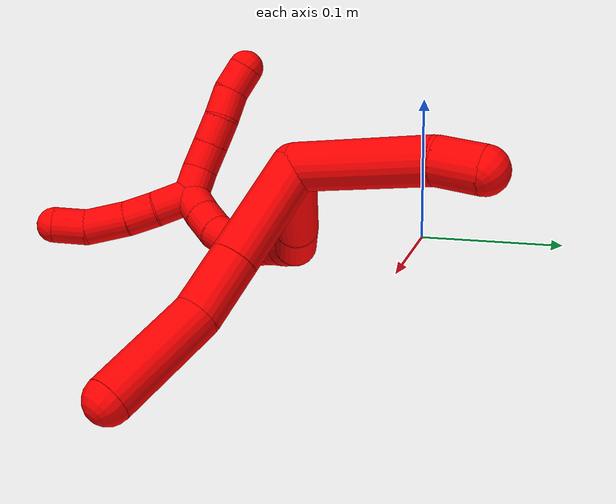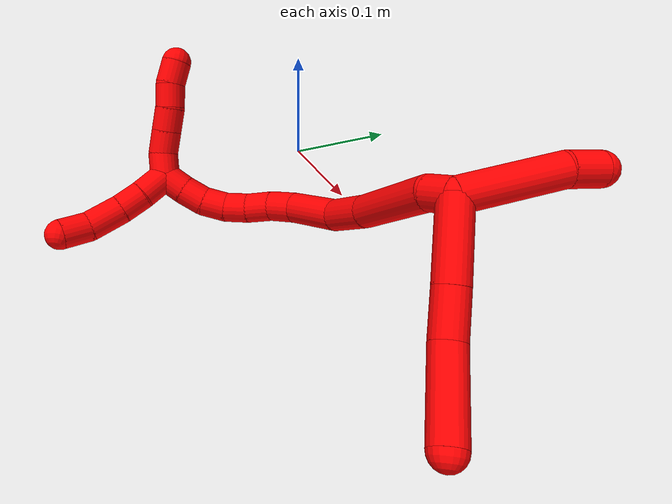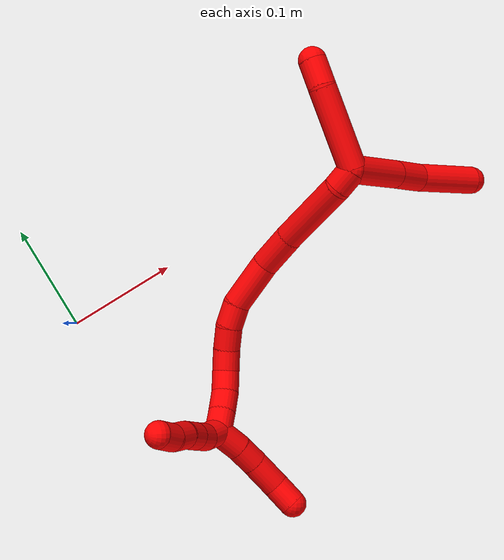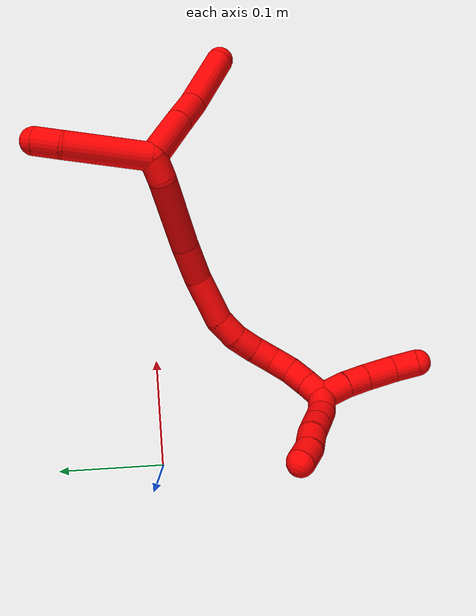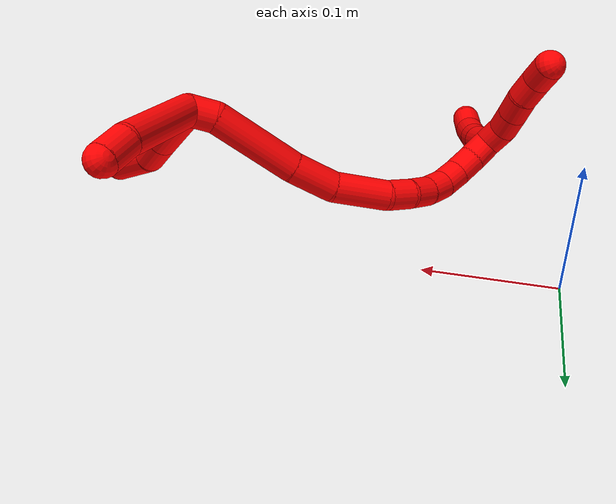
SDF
<sdf version="1.7">
 <world name="default">
  <model name="2">
   <static>0</static>
   <link name="2">
    <collision name="collision-cylinder-e_1_2_8">
     <pose>-0.000731 -0.005614 0.02774 0.199679 -0.025815 -0.002586</pose>
     <geometry><cylinder><radius>0.0125</radius><length>0.056624</length></cylinder></geometry>
     <surface>
      <friction><ode><mu>1.16</mu><mu2>1.16</mu2><slip1>0</slip1><slip2>0</slip2></ode></friction>
      <contact><ode><kp>1e+06</kp><kd>1</kd><max_vel>0</max_vel><min_depth>0.001</min_depth></ode></contact>
     </surface>
    </collision>
    <visual name="visual-cylinder-e_1_2_8">
     <pose>-0.000731 -0.005614 0.02774 0.199679 -0.025815 -0.002586</pose>
     <geometry><cylinder><radius>0.0125</radius><length>0.056624</length></cylinder></geometry>
     <material><ambient>1 0 0 1</ambient></material>
    </visual>
    <collision name="collision-cylinder-e_2_8_9">
     <pose>-0.002154 -0.014614 0.07185 0.203988 -0.041392 -0.004237</pose>
     <geometry><cylinder><radius>0.0125</radius><length>0.033461</length></cylinder></geometry>
     <surface>
      <friction><ode><mu>1.16</mu><mu2>1.16</mu2><slip1>0</slip1><slip2>0</slip2></ode></friction>
      <contact><ode><kp>1e+06</kp><kd>1</kd><max_vel>0</max_vel><min_depth>0.001</min_depth></ode></contact>
     </surface>
    </collision>
    <visual name="visual-cylinder-e_2_8_9">
     <pose>-0.002154 -0.014614 0.07185 0.203988 -0.041392 -0.004237</pose>
     <geometry><cylinder><radius>0.0125</radius><length>0.033461</length></cylinder></geometry>
     <material><ambient>1 0 0 1</ambient></material>
    </visual>
    <collision name="collision-cylinder-e_3_9_6">
     <pose>-0.001913 -0.015601 0.118066 -0.080212 0.03116 -0.00125</pose>
     <geometry><cylinder><radius>0.0125</radius><length>0.059916</length></cylinder></geometry>
     <surface>
      <friction><ode><mu>1.16</mu><mu2>1.16</mu2><slip1>0</slip1><slip2>0</slip2></ode></friction>
      <contact><ode><kp>1e+06</kp><kd>1</kd><max_vel>0</max_vel><min_depth>0.001</min_depth></ode></contact>
     </surface>
    </collision>
    <visual name="visual-cylinder-e_3_9_6">
     <pose>-0.001913 -0.015601 0.118066 -0.080212 0.03116 -0.00125</pose>
     <geometry><cylinder><radius>0.0125</radius><length>0.059916</length></cylinder></geometry>
     <material><ambient>1 0 0 1</ambient></material>
    </visual>
    <collision name="collision-cylinder-e_1_2_10">
     <pose>0.033425 -0.009325 -0.01409 2.55697 1.10276 2.23147</pose>
     <geometry><cylinder><radius>0.0125</radius><length>0.074906</length></cylinder></geometry>
     <surface>
      <friction><ode><mu>1.16</mu><mu2>1.16</mu2><slip1>0</slip1><slip2>0</slip2></ode></friction>
      <contact><ode><kp>1e+06</kp><kd>1</kd><max_vel>0</max_vel><min_depth>0.001</min_depth></ode></contact>
     </surface>
    </collision>
    <visual name="visual-cylinder-e_1_2_10">
     <pose>0.033425 -0.009325 -0.01409 2.55697 1.10276 2.23147</pose>
     <geometry><cylinder><radius>0.0125</radius><length>0.074906</length></cylinder></geometry>
     <material><ambient>1 0 0 1</ambient></material>
    </visual>
    <collision name="collision-cylinder-e_2_10_5">
     <pose>0.077843 -0.023954 -0.031088 2.0722 1.0678 1.56898</pose>
     <geometry><cylinder><radius>0.0125</radius><length>0.025094</length></cylinder></geometry>
     <surface>
      <friction><ode><mu>1.16</mu><mu2>1.16</mu2><slip1>0</slip1><slip2>0</slip2></ode></friction>
      <contact><ode><kp>1e+06</kp><kd>1</kd><max_vel>0</max_vel><min_depth>0.001</min_depth></ode></contact>
     </surface>
    </collision>
    <visual name="visual-cylinder-e_2_10_5">
     <pose>0.077843 -0.023954 -0.031088 2.0722 1.0678 1.56898</pose>
     <geometry><cylinder><radius>0.0125</radius><length>0.025094</length></cylinder></geometry>
     <material><ambient>1 0 0 1</ambient></material>
    </visual>
    <collision name="collision-cylinder-e_1_2_11">
     <pose>-0.008703 -0.005045 -0.00345 2.17054 -0.958535 -1.55557</pose>
     <geometry><cylinder><radius>0.0125</radius><length>0.021269</length></cylinder></geometry>
     <surface>
      <friction><ode><mu>1.16</mu><mu2>1.16</mu2><slip1>0</slip1><slip2>0</slip2></ode></friction>
      <contact><ode><kp>1e+06</kp><kd>1</kd><max_vel>0</max_vel><min_depth>0.001</min_depth></ode></contact>
     </surface>
    </collision>
    <visual name="visual-cylinder-e_1_2_11">
     <pose>-0.008703 -0.005045 -0.00345 2.17054 -0.958535 -1.55557</pose>
     <geometry><cylinder><radius>0.0125</radius><length>0.021269</length></cylinder></geometry>
     <material><ambient>1 0 0 1</ambient></material>
    </visual>
    <collision name="collision-cylinder-e_2_11_12">
     <pose>-0.042132 -0.035175 -0.011827 1.76478 -0.768741 -0.913943</pose>
     <geometry><cylinder><radius>0.0125</radius><length>0.071131</length></cylinder></geometry>
     <surface>
      <friction><ode><mu>1.16</mu><mu2>1.16</mu2><slip1>0</slip1><slip2>0</slip2></ode></friction>
      <contact><ode><kp>1e+06</kp><kd>1</kd><max_vel>0</max_vel><min_depth>0.001</min_depth></ode></contact>
     </surface>
    </collision>
    <visual name="visual-cylinder-e_2_11_12">
     <pose>-0.042132 -0.035175 -0.011827 1.76478 -0.768741 -0.913943</pose>
     <geometry><cylinder><radius>0.0125</radius><length>0.071131</length></cylinder></geometry>
     <material><ambient>1 0 0 1</ambient></material>
    </visual>
    <collision name="collision-cylinder-e_3_12_13">
     <pose>-0.080864 -0.071776 -0.020339 1.87248 -0.85989 -1.11423</pose>
     <geometry><cylinder><radius>0.0125</radius><length>0.036968</length></cylinder></geometry>
     <surface>
      <friction><ode><mu>1.16</mu><mu2>1.16</mu2><slip1>0</slip1><slip2>0</slip2></ode></friction>
      <contact><ode><kp>1e+06</kp><kd>1</kd><max_vel>0</max_vel><min_depth>0.001</min_depth></ode></contact>
     </surface>
    </collision>
    <visual name="visual-cylinder-e_3_12_13">
     <pose>-0.080864 -0.071776 -0.020339 1.87248 -0.85989 -1.11423</pose>
     <geometry><cylinder><radius>0.0125</radius><length>0.036968</length></cylinder></geometry>
     <material><ambient>1 0 0 1</ambient></material>
    </visual>
    <collision name="collision-cylinder-e_4_13_14">
     <pose>-0.114694 -0.092321 -0.031238 2.25173 -1.04058 -1.75342</pose>
     <geometry><cylinder><radius>0.0125</radius><length>0.045955</length></cylinder></geometry>
     <surface>
      <friction><ode><mu>1.16</mu><mu2>1.16</mu2><slip1>0</slip1><slip2>0</slip2></ode></friction>
      <contact><ode><kp>1e+06</kp><kd>1</kd><max_vel>0</max_vel><min_depth>0.001</min_depth></ode></contact>
     </surface>
    </collision>
    <visual name="visual-cylinder-e_4_13_14">
     <pose>-0.114694 -0.092321 -0.031238 2.25173 -1.04058 -1.75342</pose>
     <geometry><cylinder><radius>0.0125</radius><length>0.045955</length></cylinder></geometry>
     <material><ambient>1 0 0 1</ambient></material>
    </visual>
    <collision name="collision-cylinder-e_5_14_15">
     <pose>-0.145541 -0.103286 -0.040164 2.26469 -1.34618 -2.07834</pose>
     <geometry><cylinder><radius>0.0125</radius><length>0.022617</length></cylinder></geometry>
     <surface>
      <friction><ode><mu>1.16</mu><mu2>1.16</mu2><slip1>0</slip1><slip2>0</slip2></ode></friction>
      <contact><ode><kp>1e+06</kp><kd>1</kd><max_vel>0</max_vel><min_depth>0.001</min_depth></ode></contact>
     </surface>
    </collision>
    <visual name="visual-cylinder-e_5_14_15">
     <pose>-0.145541 -0.103286 -0.040164 2.26469 -1.34618 -2.07834</pose>
     <geometry><cylinder><radius>0.0125</radius><length>0.022617</length></cylinder></geometry>
     <material><ambient>1 0 0 1</ambient></material>
    </visual>
    <collision name="collision-cylinder-e_6_15_16">
     <pose>-0.167346 -0.10624 -0.041169 1.03405 -1.46142 -0.942588</pose>
     <geometry><cylinder><radius>0.0125</radius><length>0.021691</length></cylinder></geometry>
     <surface>
      <friction><ode><mu>1.16</mu><mu2>1.16</mu2><slip1>0</slip1><slip2>0</slip2></ode></friction>
      <contact><ode><kp>1e+06</kp><kd>1</kd><max_vel>0</max_vel><min_depth>0.001</min_depth></ode></contact>
     </surface>
    </collision>
    <visual name="visual-cylinder-e_6_15_16">
     <pose>-0.167346 -0.10624 -0.041169 1.03405 -1.46142 -0.942588</pose>
     <geometry><cylinder><radius>0.0125</radius><length>0.021691</length></cylinder></geometry>
     <material><ambient>1 0 0 1</ambient></material>
    </visual>
    <collision name="collision-cylinder-e_7_16_17">
     <pose>-0.188219 -0.106261 -0.04042 -1.42748 -1.47136 1.32976</pose>
     <geometry><cylinder><radius>0.0125</radius><length>0.020285</length></cylinder></geometry>
     <surface>
      <friction><ode><mu>1.16</mu><mu2>1.16</mu2><slip1>0</slip1><slip2>0</slip2></ode></friction>
      <contact><ode><kp>1e+06</kp><kd>1</kd><max_vel>0</max_vel><min_depth>0.001</min_depth></ode></contact>
     </surface>
    </collision>
    <visual name="visual-cylinder-e_7_16_17">
     <pose>-0.188219 -0.106261 -0.04042 -1.42748 -1.47136 1.32976</pose>
     <geometry><cylinder><radius>0.0125</radius><length>0.020285</length></cylinder></geometry>
     <material><ambient>1 0 0 1</ambient></material>
    </visual>
    <collision name="collision-cylinder-e_8_17_18">
     <pose>-0.207725 -0.10209 -0.041538 -1.94923 -1.22266 1.6032</pose>
     <geometry><cylinder><radius>0.0125</radius><length>0.020028</length></cylinder></geometry>
     <surface>
      <friction><ode><mu>1.16</mu><mu2>1.16</mu2><slip1>0</slip1><slip2>0</slip2></ode></friction>
      <contact><ode><kp>1e+06</kp><kd>1</kd><max_vel>0</max_vel><min_depth>0.001</min_depth></ode></contact>
     </surface>
    </collision>
    <visual name="visual-cylinder-e_8_17_18">
     <pose>-0.207725 -0.10209 -0.041538 -1.94923 -1.22266 1.6032</pose>
     <geometry><cylinder><radius>0.0125</radius><length>0.020028</length></cylinder></geometry>
     <material><ambient>1 0 0 1</ambient></material>
    </visual>
    <collision name="collision-cylinder-e_9_18_19">
     <pose>-0.225521 -0.094647 -0.046212 -2.24513 -0.993105 1.68986</pose>
     <geometry><cylinder><radius>0.0125</radius><length>0.020013</length></cylinder></geometry>
     <surface>
      <friction><ode><mu>1.16</mu><mu2>1.16</mu2><slip1>0</slip1><slip2>0</slip2></ode></friction>
      <contact><ode><kp>1e+06</kp><kd>1</kd><max_vel>0</max_vel><min_depth>0.001</min_depth></ode></contact>
     </surface>
    </collision>
    <visual name="visual-cylinder-e_9_18_19">
     <pose>-0.225521 -0.094647 -0.046212 -2.24513 -0.993105 1.68986</pose>
     <geometry><cylinder><radius>0.0125</radius><length>0.020013</length></cylinder></geometry>
     <material><ambient>1 0 0 1</ambient></material>
    </visual>
    <collision name="collision-cylinder-e_10_19_1">
     <pose>-0.241708 -0.08556 -0.05366 -2.26802 -0.892795 1.59567</pose>
     <geometry><cylinder><radius>0.0125</radius><length>0.020043</length></cylinder></geometry>
     <surface>
      <friction><ode><mu>1.16</mu><mu2>1.16</mu2><slip1>0</slip1><slip2>0</slip2></ode></friction>
      <contact><ode><kp>1e+06</kp><kd>1</kd><max_vel>0</max_vel><min_depth>0.001</min_depth></ode></contact>
     </surface>
    </collision>
    <visual name="visual-cylinder-e_10_19_1">
     <pose>-0.241708 -0.08556 -0.05366 -2.26802 -0.892795 1.59567</pose>
     <geometry><cylinder><radius>0.0125</radius><length>0.020043</length></cylinder></geometry>
     <material><ambient>1 0 0 1</ambient></material>
    </visual>
    <collision name="collision-cylinder-e_1_1_20">
     <pose>-0.256668 -0.078061 -0.047377 -0.254019 -0.591026 0.07771</pose>
     <geometry><cylinder><radius>0.0125</radius><length>0.02568</length></cylinder></geometry>
     <surface>
      <friction><ode><mu>1.16</mu><mu2>1.16</mu2><slip1>0</slip1><slip2>0</slip2></ode></friction>
      <contact><ode><kp>1e+06</kp><kd>1</kd><max_vel>0</max_vel><min_depth>0.001</min_depth></ode></contact>
     </surface>
    </collision>
    <visual name="visual-cylinder-e_1_1_20">
     <pose>-0.256668 -0.078061 -0.047377 -0.254019 -0.591026 0.07771</pose>
     <geometry><cylinder><radius>0.0125</radius><length>0.02568</length></cylinder></geometry>
     <material><ambient>1 0 0 1</ambient></material>
    </visual>
    <collision name="collision-cylinder-e_2_20_21">
     <pose>-0.270701 -0.073231 -0.029165 -0.266031 -0.699141 0.097478</pose>
     <geometry><cylinder><radius>0.0125</radius><length>0.021375</length></cylinder></geometry>
     <surface>
      <friction><ode><mu>1.16</mu><mu2>1.16</mu2><slip1>0</slip1><slip2>0</slip2></ode></friction>
      <contact><ode><kp>1e+06</kp><kd>1</kd><max_vel>0</max_vel><min_depth>0.001</min_depth></ode></contact>
     </surface>
    </collision>
    <visual name="visual-cylinder-e_2_20_21">
     <pose>-0.270701 -0.073231 -0.029165 -0.266031 -0.699141 0.097478</pose>
     <geometry><cylinder><radius>0.0125</radius><length>0.021375</length></cylinder></geometry>
     <material><ambient>1 0 0 1</ambient></material>
    </visual>
    <collision name="collision-cylinder-e_3_21_22">
     <pose>-0.287436 -0.066726 -0.011068 -0.403393 -0.726403 0.155116</pose>
     <geometry><cylinder><radius>0.0125</radius><length>0.029682</length></cylinder></geometry>
     <surface>
      <friction><ode><mu>1.16</mu><mu2>1.16</mu2><slip1>0</slip1><slip2>0</slip2></ode></friction>
      <contact><ode><kp>1e+06</kp><kd>1</kd><max_vel>0</max_vel><min_depth>0.001</min_depth></ode></contact>
     </surface>
    </collision>
    <visual name="visual-cylinder-e_3_21_22">
     <pose>-0.287436 -0.066726 -0.011068 -0.403393 -0.726403 0.155116</pose>
     <geometry><cylinder><radius>0.0125</radius><length>0.029682</length></cylinder></geometry>
     <material><ambient>1 0 0 1</ambient></material>
    </visual>
    <collision name="collision-cylinder-e_4_22_4">
     <pose>-0.304718 -0.056022 0.005449 -0.788213 -0.692391 0.297802</pose>
     <geometry><cylinder><radius>0.0125</radius><length>0.023263</length></cylinder></geometry>
     <surface>
      <friction><ode><mu>1.16</mu><mu2>1.16</mu2><slip1>0</slip1><slip2>0</slip2></ode></friction>
      <contact><ode><kp>1e+06</kp><kd>1</kd><max_vel>0</max_vel><min_depth>0.001</min_depth></ode></contact>
     </surface>
    </collision>
    <visual name="visual-cylinder-e_4_22_4">
     <pose>-0.304718 -0.056022 0.005449 -0.788213 -0.692391 0.297802</pose>
     <geometry><cylinder><radius>0.0125</radius><length>0.023263</length></cylinder></geometry>
     <material><ambient>1 0 0 1</ambient></material>
    </visual>
    <collision name="collision-cylinder-e_1_1_23">
     <pose>-0.250743 -0.076836 -0.06682 -2.7372 -0.123303 0.584973</pose>
     <geometry><cylinder><radius>0.0125</radius><length>0.02</length></cylinder></geometry>
     <surface>
      <friction><ode><mu>1.16</mu><mu2>1.16</mu2><slip1>0</slip1><slip2>0</slip2></ode></friction>
      <contact><ode><kp>1e+06</kp><kd>1</kd><max_vel>0</max_vel><min_depth>0.001</min_depth></ode></contact>
     </surface>
    </collision>
    <visual name="visual-cylinder-e_1_1_23">
     <pose>-0.250743 -0.076836 -0.06682 -2.7372 -0.123303 0.584973</pose>
     <geometry><cylinder><radius>0.0125</radius><length>0.02</length></cylinder></geometry>
     <material><ambient>1 0 0 1</ambient></material>
    </visual>
    <collision name="collision-cylinder-e_2_23_24">
     <pose>-0.250092 -0.068052 -0.084467 -2.62169 0.189272 -0.685589</pose>
     <geometry><cylinder><radius>0.0125</radius><length>0.02</length></cylinder></geometry>
     <surface>
      <friction><ode><mu>1.16</mu><mu2>1.16</mu2><slip1>0</slip1><slip2>0</slip2></ode></friction>
      <contact><ode><kp>1e+06</kp><kd>1</kd><max_vel>0</max_vel><min_depth>0.001</min_depth></ode></contact>
     </surface>
    </collision>
    <visual name="visual-cylinder-e_2_23_24">
     <pose>-0.250092 -0.068052 -0.084467 -2.62169 0.189272 -0.685589</pose>
     <geometry><cylinder><radius>0.0125</radius><length>0.02</length></cylinder></geometry>
     <material><ambient>1 0 0 1</ambient></material>
    </visual>
    <collision name="collision-cylinder-e_3_24_25">
     <pose>-0.246236 -0.058189 -0.101433 -2.6083 0.198783 -0.70008</pose>
     <geometry><cylinder><radius>0.0125</radius><length>0.02</length></cylinder></geometry>
     <surface>
      <friction><ode><mu>1.16</mu><mu2>1.16</mu2><slip1>0</slip1><slip2>0</slip2></ode></friction>
      <contact><ode><kp>1e+06</kp><kd>1</kd><max_vel>0</max_vel><min_depth>0.001</min_depth></ode></contact>
     </surface>
    </collision>
    <visual name="visual-cylinder-e_3_24_25">
     <pose>-0.246236 -0.058189 -0.101433 -2.6083 0.198783 -0.70008</pose>
     <geometry><cylinder><radius>0.0125</radius><length>0.02</length></cylinder></geometry>
     <material><ambient>1 0 0 1</ambient></material>
    </visual>
    <collision name="collision-cylinder-e_4_25_26">
     <pose>-0.244016 -0.048496 -0.118693 -2.65108 0.024475 -0.097711</pose>
     <geometry><cylinder><radius>0.0125</radius><length>0.02</length></cylinder></geometry>
     <surface>
      <friction><ode><mu>1.16</mu><mu2>1.16</mu2><slip1>0</slip1><slip2>0</slip2></ode></friction>
      <contact><ode><kp>1e+06</kp><kd>1</kd><max_vel>0</max_vel><min_depth>0.001</min_depth></ode></contact>
     </surface>
    </collision>
    <visual name="visual-cylinder-e_4_25_26">
     <pose>-0.244016 -0.048496 -0.118693 -2.65108 0.024475 -0.097711</pose>
     <geometry><cylinder><radius>0.0125</radius><length>0.02</length></cylinder></geometry>
     <material><ambient>1 0 0 1</ambient></material>
    </visual>
    <collision name="collision-cylinder-e_5_26_3">
     <pose>-0.241355 -0.040324 -0.136576 -2.77665 0.244075 -1.17323</pose>
     <geometry><cylinder><radius>0.0125</radius><length>0.02</length></cylinder></geometry>
     <surface>
      <friction><ode><mu>1.16</mu><mu2>1.16</mu2><slip1>0</slip1><slip2>0</slip2></ode></friction>
      <contact><ode><kp>1e+06</kp><kd>1</kd><max_vel>0</max_vel><min_depth>0.001</min_depth></ode></contact>
     </surface>
    </collision>
    <visual name="visual-cylinder-e_5_26_3">
     <pose>-0.241355 -0.040324 -0.136576 -2.77665 0.244075 -1.17323</pose>
     <geometry><cylinder><radius>0.0125</radius><length>0.02</length></cylinder></geometry>
     <material><ambient>1 0 0 1</ambient></material>
    </visual>
    <collision name="collision-sphere-3">
     <pose>-0.238938 -0.03686 -0.14564 0 -0 0</pose>
     <geometry><sphere><radius>0.0125</radius></sphere></geometry>
     <surface>
      <friction><ode><mu>1.16</mu><mu2>1.16</mu2><slip1>0</slip1><slip2>0</slip2></ode></friction>
      <contact><ode><kp>1e+06</kp><kd>1</kd><max_vel>0</max_vel><min_depth>0.001</min_depth></ode></contact>
     </surface>
    </collision>
    <visual name="visual-sphere-3">
     <pose>-0.238938 -0.03686 -0.14564 0 -0 0</pose>
     <geometry><sphere><radius>0.0125</radius></sphere></geometry>
     <material><ambient>1 0 0 1</ambient></material>
    </visual>
    <collision name="collision-sphere-26">
     <pose>-0.243771 -0.043787 -0.127511 0 -0 0</pose>
     <geometry><sphere><radius>0.0125</radius></sphere></geometry>
     <surface>
      <friction><ode><mu>1.16</mu><mu2>1.16</mu2><slip1>0</slip1><slip2>0</slip2></ode></friction>
      <contact><ode><kp>1e+06</kp><kd>1</kd><max_vel>0</max_vel><min_depth>0.001</min_depth></ode></contact>
     </surface>
    </collision>
    <visual name="visual-sphere-26">
     <pose>-0.243771 -0.043787 -0.127511 0 -0 0</pose>
     <geometry><sphere><radius>0.0125</radius></sphere></geometry>
     <material><ambient>1 0 0 1</ambient></material>
    </visual>
    <collision name="collision-sphere-25">
     <pose>-0.244261 -0.053205 -0.109875 0 -0 0</pose>
     <geometry><sphere><radius>0.0125</radius></sphere></geometry>
     <surface>
      <friction><ode><mu>1.16</mu><mu2>1.16</mu2><slip1>0</slip1><slip2>0</slip2></ode></friction>
      <contact><ode><kp>1e+06</kp><kd>1</kd><max_vel>0</max_vel><min_depth>0.001</min_depth></ode></contact>
     </surface>
    </collision>
    <visual name="visual-sphere-25">
     <pose>-0.244261 -0.053205 -0.109875 0 -0 0</pose>
     <geometry><sphere><radius>0.0125</radius></sphere></geometry>
     <material><ambient>1 0 0 1</ambient></material>
    </visual>
    <collision name="collision-sphere-24">
     <pose>-0.24821 -0.063173 -0.092991 0 -0 0</pose>
     <geometry><sphere><radius>0.0125</radius></sphere></geometry>
     <surface>
      <friction><ode><mu>1.16</mu><mu2>1.16</mu2><slip1>0</slip1><slip2>0</slip2></ode></friction>
      <contact><ode><kp>1e+06</kp><kd>1</kd><max_vel>0</max_vel><min_depth>0.001</min_depth></ode></contact>
     </surface>
    </collision>
    <visual name="visual-sphere-24">
     <pose>-0.24821 -0.063173 -0.092991 0 -0 0</pose>
     <geometry><sphere><radius>0.0125</radius></sphere></geometry>
     <material><ambient>1 0 0 1</ambient></material>
    </visual>
    <collision name="collision-sphere-23">
     <pose>-0.251973 -0.072931 -0.075944 0 -0 0</pose>
     <geometry><sphere><radius>0.0125</radius></sphere></geometry>
     <surface>
      <friction><ode><mu>1.16</mu><mu2>1.16</mu2><slip1>0</slip1><slip2>0</slip2></ode></friction>
      <contact><ode><kp>1e+06</kp><kd>1</kd><max_vel>0</max_vel><min_depth>0.001</min_depth></ode></contact>
     </surface>
    </collision>
    <visual name="visual-sphere-23">
     <pose>-0.251973 -0.072931 -0.075944 0 -0 0</pose>
     <geometry><sphere><radius>0.0125</radius></sphere></geometry>
     <material><ambient>1 0 0 1</ambient></material>
    </visual>
    <collision name="collision-sphere-4">
     <pose>-0.312144 -0.049673 0.011762 0 -0 0</pose>
     <geometry><sphere><radius>0.0125</radius></sphere></geometry>
     <surface>
      <friction><ode><mu>1.16</mu><mu2>1.16</mu2><slip1>0</slip1><slip2>0</slip2></ode></friction>
      <contact><ode><kp>1e+06</kp><kd>1</kd><max_vel>0</max_vel><min_depth>0.001</min_depth></ode></contact>
     </surface>
    </collision>
    <visual name="visual-sphere-4">
     <pose>-0.312144 -0.049673 0.011762 0 -0 0</pose>
     <geometry><sphere><radius>0.0125</radius></sphere></geometry>
     <material><ambient>1 0 0 1</ambient></material>
    </visual>
    <collision name="collision-sphere-22">
     <pose>-0.297293 -0.062371 -0.000864 0 -0 0</pose>
     <geometry><sphere><radius>0.0125</radius></sphere></geometry>
     <surface>
      <friction><ode><mu>1.16</mu><mu2>1.16</mu2><slip1>0</slip1><slip2>0</slip2></ode></friction>
      <contact><ode><kp>1e+06</kp><kd>1</kd><max_vel>0</max_vel><min_depth>0.001</min_depth></ode></contact>
     </surface>
    </collision>
    <visual name="visual-sphere-22">
     <pose>-0.297293 -0.062371 -0.000864 0 -0 0</pose>
     <geometry><sphere><radius>0.0125</radius></sphere></geometry>
     <material><ambient>1 0 0 1</ambient></material>
    </visual>
    <collision name="collision-sphere-21">
     <pose>-0.277579 -0.071081 -0.021272 0 -0 0</pose>
     <geometry><sphere><radius>0.0125</radius></sphere></geometry>
     <surface>
      <friction><ode><mu>1.16</mu><mu2>1.16</mu2><slip1>0</slip1><slip2>0</slip2></ode></friction>
      <contact><ode><kp>1e+06</kp><kd>1</kd><max_vel>0</max_vel><min_depth>0.001</min_depth></ode></contact>
     </surface>
    </collision>
    <visual name="visual-sphere-21">
     <pose>-0.277579 -0.071081 -0.021272 0 -0 0</pose>
     <geometry><sphere><radius>0.0125</radius></sphere></geometry>
     <material><ambient>1 0 0 1</ambient></material>
    </visual>
    <collision name="collision-sphere-20">
     <pose>-0.263822 -0.075382 -0.037057 0 -0 0</pose>
     <geometry><sphere><radius>0.0125</radius></sphere></geometry>
     <surface>
      <friction><ode><mu>1.16</mu><mu2>1.16</mu2><slip1>0</slip1><slip2>0</slip2></ode></friction>
      <contact><ode><kp>1e+06</kp><kd>1</kd><max_vel>0</max_vel><min_depth>0.001</min_depth></ode></contact>
     </surface>
    </collision>
    <visual name="visual-sphere-20">
     <pose>-0.263822 -0.075382 -0.037057 0 -0 0</pose>
     <geometry><sphere><radius>0.0125</radius></sphere></geometry>
     <material><ambient>1 0 0 1</ambient></material>
    </visual>
    <collision name="collision-sphere-5">
     <pose>0.088836 -0.029257 -0.033995 0 -0 0</pose>
     <geometry><sphere><radius>0.0125</radius></sphere></geometry>
     <surface>
      <friction><ode><mu>1.16</mu><mu2>1.16</mu2><slip1>0</slip1><slip2>0</slip2></ode></friction>
      <contact><ode><kp>1e+06</kp><kd>1</kd><max_vel>0</max_vel><min_depth>0.001</min_depth></ode></contact>
     </surface>
    </collision>
    <visual name="visual-sphere-5">
     <pose>0.088836 -0.029257 -0.033995 0 -0 0</pose>
     <geometry><sphere><radius>0.0125</radius></sphere></geometry>
     <material><ambient>1 0 0 1</ambient></material>
    </visual>
    <collision name="collision-sphere-10">
     <pose>0.066851 -0.01865 -0.028181 0 -0 0</pose>
     <geometry><sphere><radius>0.0125</radius></sphere></geometry>
     <surface>
      <friction><ode><mu>1.16</mu><mu2>1.16</mu2><slip1>0</slip1><slip2>0</slip2></ode></friction>
      <contact><ode><kp>1e+06</kp><kd>1</kd><max_vel>0</max_vel><min_depth>0.001</min_depth></ode></contact>
     </surface>
    </collision>
    <visual name="visual-sphere-10">
     <pose>0.066851 -0.01865 -0.028181 0 -0 0</pose>
     <geometry><sphere><radius>0.0125</radius></sphere></geometry>
     <material><ambient>1 0 0 1</ambient></material>
    </visual>
    <collision name="collision-sphere-6">
     <pose>-0.000979 -0.013202 0.147913 0 -0 0</pose>
     <geometry><sphere><radius>0.0125</radius></sphere></geometry>
     <surface>
      <friction><ode><mu>1.16</mu><mu2>1.16</mu2><slip1>0</slip1><slip2>0</slip2></ode></friction>
      <contact><ode><kp>1e+06</kp><kd>1</kd><max_vel>0</max_vel><min_depth>0.001</min_depth></ode></contact>
     </surface>
    </collision>
    <visual name="visual-sphere-6">
     <pose>-0.000979 -0.013202 0.147913 0 -0 0</pose>
     <geometry><sphere><radius>0.0125</radius></sphere></geometry>
     <material><ambient>1 0 0 1</ambient></material>
    </visual>
    <collision name="collision-sphere-9">
     <pose>-0.002846 -0.018 0.088219 0 -0 0</pose>
     <geometry><sphere><radius>0.0125</radius></sphere></geometry>
     <surface>
      <friction><ode><mu>1.16</mu><mu2>1.16</mu2><slip1>0</slip1><slip2>0</slip2></ode></friction>
      <contact><ode><kp>1e+06</kp><kd>1</kd><max_vel>0</max_vel><min_depth>0.001</min_depth></ode></contact>
     </surface>
    </collision>
    <visual name="visual-sphere-9">
     <pose>-0.002846 -0.018 0.088219 0 -0 0</pose>
     <geometry><sphere><radius>0.0125</radius></sphere></geometry>
     <material><ambient>1 0 0 1</ambient></material>
    </visual>
    <collision name="collision-sphere-2">
     <geometry><sphere><radius>0.0125</radius></sphere></geometry>
     <surface>
      <friction><ode><mu>1.16</mu><mu2>1.16</mu2><slip1>0</slip1><slip2>0</slip2></ode></friction>
      <contact><ode><kp>1e+06</kp><kd>1</kd><max_vel>0</max_vel><min_depth>0.001</min_depth></ode></contact>
     </surface>
    </collision>
    <visual name="visual-sphere-2">
     <geometry><sphere><radius>0.0125</radius></sphere></geometry>
     <material><ambient>1 0 0 1</ambient></material>
    </visual>
    <collision name="collision-sphere-19">
     <pose>-0.233903 -0.090379 -0.049624 0 -0 0</pose>
     <geometry><sphere><radius>0.0125</radius></sphere></geometry>
     <surface>
      <friction><ode><mu>1.16</mu><mu2>1.16</mu2><slip1>0</slip1><slip2>0</slip2></ode></friction>
      <contact><ode><kp>1e+06</kp><kd>1</kd><max_vel>0</max_vel><min_depth>0.001</min_depth></ode></contact>
     </surface>
    </collision>
    <visual name="visual-sphere-19">
     <pose>-0.233903 -0.090379 -0.049624 0 -0 0</pose>
     <geometry><sphere><radius>0.0125</radius></sphere></geometry>
     <material><ambient>1 0 0 1</ambient></material>
    </visual>
    <collision name="collision-sphere-8">
     <pose>-0.001462 -0.011228 0.05548 0 -0 0</pose>
     <geometry><sphere><radius>0.0125</radius></sphere></geometry>
     <surface>
      <friction><ode><mu>1.16</mu><mu2>1.16</mu2><slip1>0</slip1><slip2>0</slip2></ode></friction>
      <contact><ode><kp>1e+06</kp><kd>1</kd><max_vel>0</max_vel><min_depth>0.001</min_depth></ode></contact>
     </surface>
    </collision>
    <visual name="visual-sphere-8">
     <pose>-0.001462 -0.011228 0.05548 0 -0 0</pose>
     <geometry><sphere><radius>0.0125</radius></sphere></geometry>
     <material><ambient>1 0 0 1</ambient></material>
    </visual>
    <collision name="collision-sphere-11">
     <pose>-0.017405 -0.01009 -0.006899 0 -0 0</pose>
     <geometry><sphere><radius>0.0125</radius></sphere></geometry>
     <surface>
      <friction><ode><mu>1.16</mu><mu2>1.16</mu2><slip1>0</slip1><slip2>0</slip2></ode></friction>
      <contact><ode><kp>1e+06</kp><kd>1</kd><max_vel>0</max_vel><min_depth>0.001</min_depth></ode></contact>
     </surface>
    </collision>
    <visual name="visual-sphere-11">
     <pose>-0.017405 -0.01009 -0.006899 0 -0 0</pose>
     <geometry><sphere><radius>0.0125</radius></sphere></geometry>
     <material><ambient>1 0 0 1</ambient></material>
    </visual>
    <collision name="collision-sphere-12">
     <pose>-0.066858 -0.060259 -0.016755 0 -0 0</pose>
     <geometry><sphere><radius>0.0125</radius></sphere></geometry>
     <surface>
      <friction><ode><mu>1.16</mu><mu2>1.16</mu2><slip1>0</slip1><slip2>0</slip2></ode></friction>
      <contact><ode><kp>1e+06</kp><kd>1</kd><max_vel>0</max_vel><min_depth>0.001</min_depth></ode></contact>
     </surface>
    </collision>
    <visual name="visual-sphere-12">
     <pose>-0.066858 -0.060259 -0.016755 0 -0 0</pose>
     <geometry><sphere><radius>0.0125</radius></sphere></geometry>
     <material><ambient>1 0 0 1</ambient></material>
    </visual>
    <collision name="collision-sphere-13">
     <pose>-0.094871 -0.083292 -0.023923 0 -0 0</pose>
     <geometry><sphere><radius>0.0125</radius></sphere></geometry>
     <surface>
      <friction><ode><mu>1.16</mu><mu2>1.16</mu2><slip1>0</slip1><slip2>0</slip2></ode></friction>
      <contact><ode><kp>1e+06</kp><kd>1</kd><max_vel>0</max_vel><min_depth>0.001</min_depth></ode></contact>
     </surface>
    </collision>
    <visual name="visual-sphere-13">
     <pose>-0.094871 -0.083292 -0.023923 0 -0 0</pose>
     <geometry><sphere><radius>0.0125</radius></sphere></geometry>
     <material><ambient>1 0 0 1</ambient></material>
    </visual>
    <collision name="collision-sphere-14">
     <pose>-0.134516 -0.10135 -0.038553 0 -0 0</pose>
     <geometry><sphere><radius>0.0125</radius></sphere></geometry>
     <surface>
      <friction><ode><mu>1.16</mu><mu2>1.16</mu2><slip1>0</slip1><slip2>0</slip2></ode></friction>
      <contact><ode><kp>1e+06</kp><kd>1</kd><max_vel>0</max_vel><min_depth>0.001</min_depth></ode></contact>
     </surface>
    </collision>
    <visual name="visual-sphere-14">
     <pose>-0.134516 -0.10135 -0.038553 0 -0 0</pose>
     <geometry><sphere><radius>0.0125</radius></sphere></geometry>
     <material><ambient>1 0 0 1</ambient></material>
    </visual>
    <collision name="collision-sphere-15">
     <pose>-0.156565 -0.105223 -0.041775 0 -0 0</pose>
     <geometry><sphere><radius>0.0125</radius></sphere></geometry>
     <surface>
      <friction><ode><mu>1.16</mu><mu2>1.16</mu2><slip1>0</slip1><slip2>0</slip2></ode></friction>
      <contact><ode><kp>1e+06</kp><kd>1</kd><max_vel>0</max_vel><min_depth>0.001</min_depth></ode></contact>
     </surface>
    </collision>
    <visual name="visual-sphere-15">
     <pose>-0.156565 -0.105223 -0.041775 0 -0 0</pose>
     <geometry><sphere><radius>0.0125</radius></sphere></geometry>
     <material><ambient>1 0 0 1</ambient></material>
    </visual>
    <collision name="collision-sphere-16">
     <pose>-0.178127 -0.107257 -0.040564 0 -0 0</pose>
     <geometry><sphere><radius>0.0125</radius></sphere></geometry>
     <surface>
      <friction><ode><mu>1.16</mu><mu2>1.16</mu2><slip1>0</slip1><slip2>0</slip2></ode></friction>
      <contact><ode><kp>1e+06</kp><kd>1</kd><max_vel>0</max_vel><min_depth>0.001</min_depth></ode></contact>
     </surface>
    </collision>
    <visual name="visual-sphere-16">
     <pose>-0.178127 -0.107257 -0.040564 0 -0 0</pose>
     <geometry><sphere><radius>0.0125</radius></sphere></geometry>
     <material><ambient>1 0 0 1</ambient></material>
    </visual>
    <collision name="collision-sphere-17">
     <pose>-0.198312 -0.105264 -0.040276 0 -0 0</pose>
     <geometry><sphere><radius>0.0125</radius></sphere></geometry>
     <surface>
      <friction><ode><mu>1.16</mu><mu2>1.16</mu2><slip1>0</slip1><slip2>0</slip2></ode></friction>
      <contact><ode><kp>1e+06</kp><kd>1</kd><max_vel>0</max_vel><min_depth>0.001</min_depth></ode></contact>
     </surface>
    </collision>
    <visual name="visual-sphere-17">
     <pose>-0.198312 -0.105264 -0.040276 0 -0 0</pose>
     <geometry><sphere><radius>0.0125</radius></sphere></geometry>
     <material><ambient>1 0 0 1</ambient></material>
    </visual>
    <collision name="collision-sphere-18">
     <pose>-0.217138 -0.098915 -0.042801 0 -0 0</pose>
     <geometry><sphere><radius>0.0125</radius></sphere></geometry>
     <surface>
      <friction><ode><mu>1.16</mu><mu2>1.16</mu2><slip1>0</slip1><slip2>0</slip2></ode></friction>
      <contact><ode><kp>1e+06</kp><kd>1</kd><max_vel>0</max_vel><min_depth>0.001</min_depth></ode></contact>
     </surface>
    </collision>
    <visual name="visual-sphere-18">
     <pose>-0.217138 -0.098915 -0.042801 0 -0 0</pose>
     <geometry><sphere><radius>0.0125</radius></sphere></geometry>
     <material><ambient>1 0 0 1</ambient></material>
    </visual>
    <collision name="collision-sphere-1">
     <pose>-0.249513 -0.080741 -0.057697 0 -0 0</pose>
     <geometry><sphere><radius>0.0125</radius></sphere></geometry>
     <surface>
      <friction><ode><mu>1.16</mu><mu2>1.16</mu2><slip1>0</slip1><slip2>0</slip2></ode></friction>
      <contact><ode><kp>1e+06</kp><kd>1</kd><max_vel>0</max_vel><min_depth>0.001</min_depth></ode></contact>
     </surface>
    </collision>
    <visual name="visual-sphere-1">
     <pose>-0.249513 -0.080741 -0.057697 0 -0 0</pose>
     <geometry><sphere><radius>0.0125</radius></sphere></geometry>
     <material><ambient>1 0 0 1</ambient></material>
    </visual>
    <inertial>
     <pose>-0.112157 -0.050251 -0.015392 0 -0 0</pose>
     <mass>0.75</mass>
     <inertia><ixx>2.9e-05</ixx><ixy>0</ixy><ixz>0</ixz><iyy>9.9e-05</iyy><iyz>0</iyz><izz>5.5e-05</izz></inertia>
    </inertial>
   </link>
   <pose>0.283014 -0.018066 0.103786 2.15992 -0.135869 0.914047</pose>
  </model>
 </world>
</sdf>
